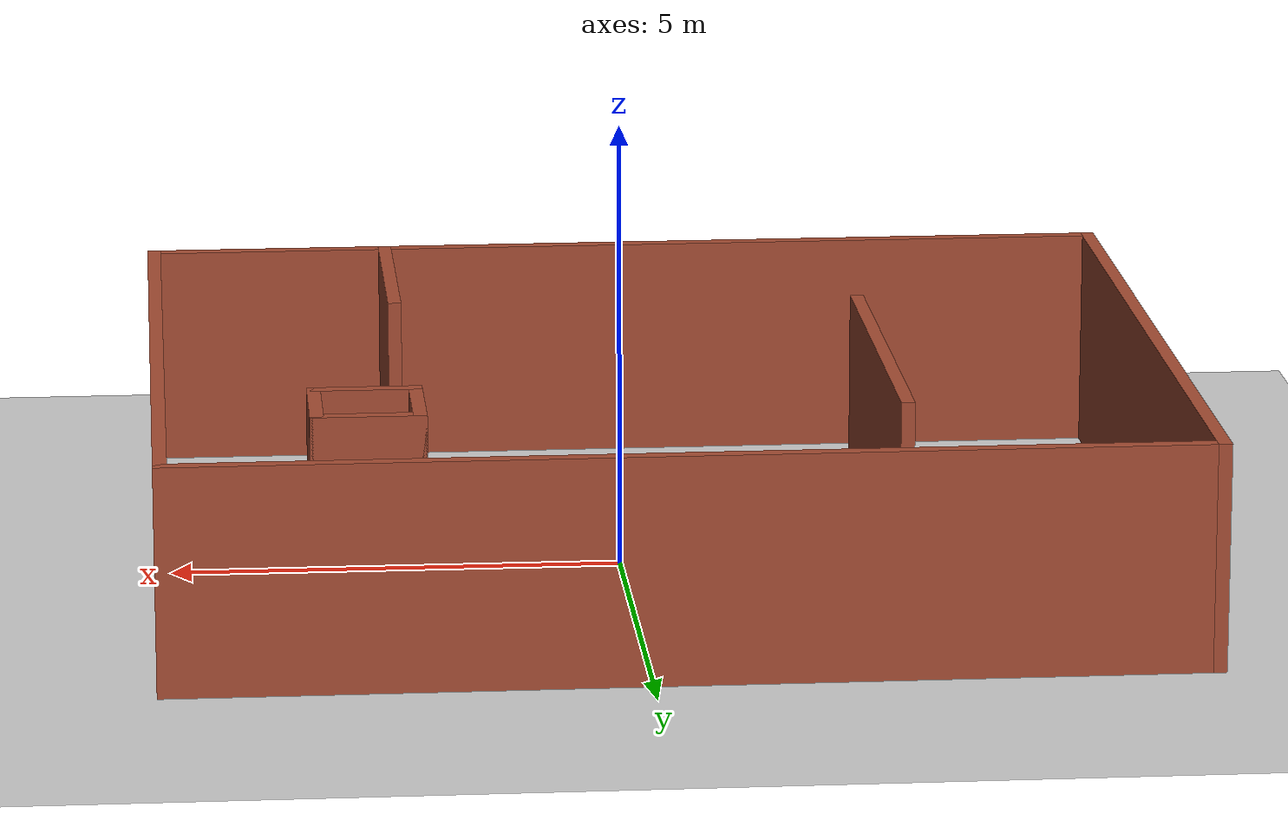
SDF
<sdf version="1.7">
 <world name="default">
  <light name="sun" type="directional">
   <pose>0 0 10 0 -0 0</pose>
   <diffuse>0.8 0.8 0.8 1</diffuse>
   <specular>0.2 0.2 0.2 1</specular>
   <attenuation>
    <range>1000</range>
    <constant>0.9</constant>
    <linear>0.01</linear>
    <quadratic>0.001</quadratic>
   </attenuation>
   <direction>-0.5 0.1 -0.9</direction>
   <spot><inner_angle>0</inner_angle><outer_angle>0</outer_angle><falloff>0</falloff></spot>
  </light>
  <model name="ground_plane">
   <static>1</static>
   <link name="link">
    <collision name="collision">
     <geometry><plane><normal>0 0 1</normal><size>100 100</size></plane></geometry>
     <surface>
      <contact><collide_bitmask>65535</collide_bitmask></contact>
      <friction><ode><mu>100</mu><mu2>50</mu2></ode></friction>
     </surface>
    </collision>
    <visual name="visual">
     <cast_shadows>0</cast_shadows>
     <geometry><plane><normal>0 0 1</normal><size>100 100</size></plane></geometry>
     <material>
      <script><uri>file://media/materials/scripts/gazebo.material</uri><name>Gazebo/Grey</name></script>
     </material>
    </visual>
   </link>
  </model>
  <gravity>0 0 -9.8</gravity>
  <magnetic_field>6e-06 2.3e-05 -4.2e-05</magnetic_field>
  <atmosphere type="adiabatic"/>
  <physics type="ode">
   <max_step_size>0.001</max_step_size>
   <real_time_factor>1</real_time_factor>
   <real_time_update_rate>1000</real_time_update_rate>
  </physics>
  <scene><ambient>0.4 0.4 0.4 1</ambient><background>0.7 0.7 0.7 1</background><shadows>1</shadows></scene>
  <spherical_coordinates>
   <surface_model>EARTH_WGS84</surface_model>
   <latitude_deg>0</latitude_deg>
   <longitude_deg>0</longitude_deg>
   <elevation>0</elevation>
   <heading_deg>0</heading_deg>
  </spherical_coordinates>
  <model name="room1">
   <pose>-0.436 -0.191 0 0 -0 0</pose>
   <link name="Wall_10">
    <collision name="Wall_10_Collision">
     <geometry><box><size>11.25 0.15 2.5</size></box></geometry>
     <pose>0 0 1.25 0 -0 0</pose>
    </collision>
    <visual name="Wall_10_Visual">
     <pose>0 0 1.25 0 -0 0</pose>
     <geometry><box><size>11.25 0.15 2.5</size></box></geometry>
     <material>
      <script><uri>file://media/materials/scripts/gazebo.material</uri><name>Gazebo/Bricks</name></script>
      <ambient>1 1 1 1</ambient>
     </material>
     <meta><layer>0</layer></meta>
    </visual>
    <pose>0 4.675 0 0 -0 0</pose>
   </link>
   <link name="Wall_12">
    <collision name="Wall_12_Collision">
     <geometry><box><size>4.75 0.15 2.5</size></box></geometry>
     <pose>0 0 1.25 0 -0 0</pose>
    </collision>
    <visual name="Wall_12_Visual">
     <pose>0 0 1.25 0 -0 0</pose>
     <geometry><box><size>4.75 0.15 2.5</size></box></geometry>
     <material>
      <script><uri>file://media/materials/scripts/gazebo.material</uri><name>Gazebo/Bricks</name></script>
      <ambient>1 1 1 1</ambient>
     </material>
     <meta><layer>0</layer></meta>
    </visual>
    <pose>-2.455 0.444 0 0 -0 -1.5708</pose>
   </link>
   <link name="Wall_15">
    <collision name="Wall_15_Collision">
     <geometry><box><size>1.25 0.15 2.5</size></box></geometry>
     <pose>0 0 1.25 0 -0 0</pose>
    </collision>
    <visual name="Wall_15_Visual">
     <pose>0 0 1.25 0 -0 0</pose>
     <geometry><box><size>1.25 0.15 2.5</size></box></geometry>
     <material>
      <script><uri>file://media/materials/scripts/gazebo.material</uri><name>Gazebo/Bricks</name></script>
      <ambient>1 1 1 1</ambient>
     </material>
     <meta><layer>0</layer></meta>
    </visual>
    <pose>2.775 2.295 0 0 -0 -1.5708</pose>
   </link>
   <link name="Wall_16">
    <collision name="Wall_16_Collision">
     <geometry><box><size>1.25 0.15 2.5</size></box></geometry>
     <pose>0 0 1.25 0 -0 0</pose>
    </collision>
    <visual name="Wall_16_Visual">
     <pose>0 0 1.25 0 -0 0</pose>
     <geometry><box><size>1.25 0.15 2.5</size></box></geometry>
     <material>
      <script><uri>file://media/materials/scripts/gazebo.material</uri><name>Gazebo/Bricks</name></script>
      <ambient>1 1 1 1</ambient>
     </material>
     <meta><layer>0</layer></meta>
    </visual>
    <pose>3.325 1.745 0 0 -0 0</pose>
   </link>
   <link name="Wall_17">
    <collision name="Wall_17_Collision">
     <geometry><box><size>1.25 0.15 2.5</size></box></geometry>
     <pose>0 0 1.25 0 -0 0</pose>
    </collision>
    <visual name="Wall_17_Visual">
     <pose>0 0 1.25 0 -0 0</pose>
     <geometry><box><size>1.25 0.15 2.5</size></box></geometry>
     <material>
      <script><uri>file://media/materials/scripts/gazebo.material</uri><name>Gazebo/Bricks</name></script>
      <ambient>1 1 1 1</ambient>
     </material>
     <meta><layer>0</layer></meta>
    </visual>
    <pose>3.875 2.295 0 0 -0 1.5708</pose>
   </link>
   <link name="Wall_18">
    <collision name="Wall_18_Collision">
     <geometry><box><size>1.25 0.15 2.5</size></box></geometry>
     <pose>0 0 1.25 0 -0 0</pose>
    </collision>
    <visual name="Wall_18_Visual">
     <pose>0 0 1.25 0 -0 0</pose>
     <geometry><box><size>1.25 0.15 2.5</size></box></geometry>
     <material>
      <script><uri>file://media/materials/scripts/gazebo.material</uri><name>Gazebo/Bricks</name></script>
      <ambient>1 1 1 1</ambient>
     </material>
     <meta><layer>0</layer></meta>
    </visual>
    <pose>3.325 2.845 0 0 -0 3.14159</pose>
   </link>
   <link name="Wall_20">
    <collision name="Wall_20_Collision">
     <geometry><box><size>2.75 0.15 2.5</size></box></geometry>
     <pose>0 0 1.25 0 -0 0</pose>
    </collision>
    <visual name="Wall_20_Visual">
     <pose>0 0 1.25 0 -0 0</pose>
     <geometry><box><size>2.75 0.15 2.5</size></box></geometry>
     <material>
      <script><uri>file://media/materials/scripts/gazebo.material</uri><name>Gazebo/Bricks</name></script>
      <ambient>1 1 1 1</ambient>
     </material>
     <meta><layer>0</layer></meta>
    </visual>
    <pose>2.835 -3.363 0 0 -0 -1.5708</pose>
   </link>
   <link name="Wall_7">
    <collision name="Wall_7_Collision">
     <geometry><box><size>9.5 0.15 2.5</size></box></geometry>
     <pose>0 0 1.25 0 -0 0</pose>
    </collision>
    <visual name="Wall_7_Visual">
     <pose>0 0 1.25 0 -0 0</pose>
     <geometry><box><size>9.5 0.15 2.5</size></box></geometry>
     <material>
      <script><uri>file://media/materials/scripts/gazebo.material</uri><name>Gazebo/Bricks</name></script>
      <ambient>1 1 1 1</ambient>
     </material>
     <meta><layer>0</layer></meta>
    </visual>
    <pose>5.55 -0 0 0 -0 -1.5708</pose>
   </link>
   <link name="Wall_8">
    <collision name="Wall_8_Collision">
     <geometry><box><size>11.25 0.15 2.5</size></box></geometry>
     <pose>0 0 1.25 0 -0 0</pose>
    </collision>
    <visual name="Wall_8_Visual">
     <pose>0 0 1.25 0 -0 0</pose>
     <geometry><box><size>11.25 0.15 2.5</size></box></geometry>
     <material>
      <script><uri>file://media/materials/scripts/gazebo.material</uri><name>Gazebo/Bricks</name></script>
      <ambient>1 1 1 1</ambient>
     </material>
     <meta><layer>0</layer></meta>
    </visual>
    <pose>0 -4.675 0 0 -0 3.14159</pose>
   </link>
   <link name="Wall_9">
    <collision name="Wall_9_Collision">
     <geometry><box><size>9.5 0.15 2.5</size></box></geometry>
     <pose>0 0 1.25 0 -0 0</pose>
    </collision>
    <visual name="Wall_9_Visual">
     <pose>0 0 1.25 0 -0 0</pose>
     <geometry><box><size>9.5 0.15 2.5</size></box></geometry>
     <material>
      <script><uri>file://media/materials/scripts/gazebo.material</uri><name>Gazebo/Bricks</name></script>
      <ambient>1 1 1 1</ambient>
     </material>
     <meta><layer>0</layer></meta>
    </visual>
    <pose>-5.55 -0 0 0 -0 1.5708</pose>
   </link>
   <static>1</static>
  </model>
 </world>
</sdf>
